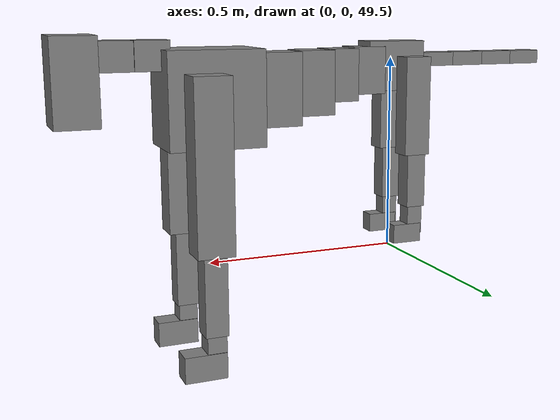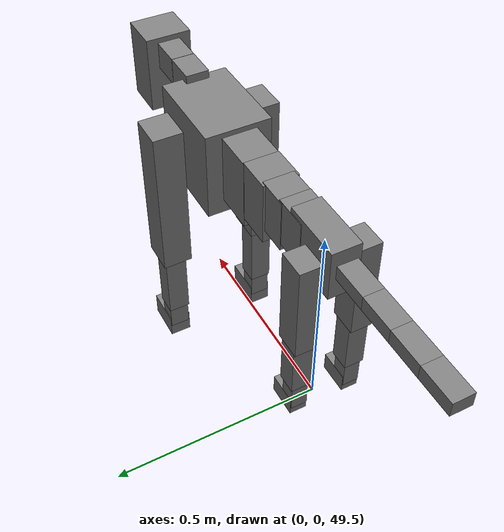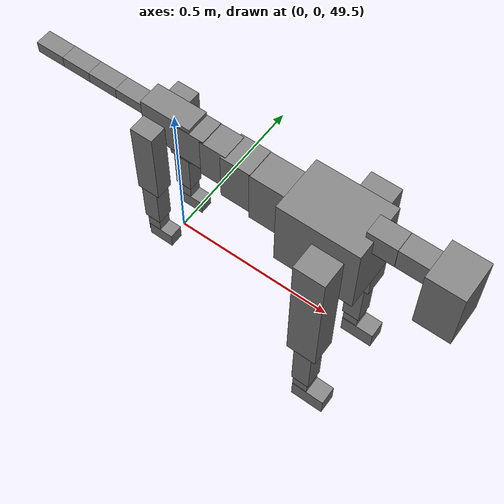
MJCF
<mujoco model="dog">

    <default>
        <joint armature="0.02" stiffness="1" damping="0.2" limited="true"/>
        <geom condim="3" friction="1 0.05 0.05" margin="0.01"/>
        <motor ctrllimited="true" ctrlrange="-1.0 1.0" forcelimited="true" gear="50"/>
    </default>

    <compiler inertiafromgeom="true" angle="radian"/>

    <option timestep="0.016" iterations="50" tolerance="1e-10" solver="Newton" jacobian="dense" cone="pyramidal"/>

    <size nconmax="20000" njmax="60000" nstack="5000000"/>
    <visual>
        <map force="0.1" zfar="30"/>
        <rgba haze="0.15 0.25 0.35 1"/>
        <quality shadowsize="2048"/>
        <global offwidth="800" offheight="800"/>
    </visual>

    <asset>
        <texture type="skybox" builtin="gradient" rgb1="0.3 0.5 0.7" rgb2="0 0 0" width="512" height="512"/>
        <texture name="texplane" type="2d" builtin="checker" rgb1=".2 .3 .4" rgb2=".1 0.15 0.2" width="512" height="512"
                 mark="cross" markrgb=".8 .8 .8"/>
        <texture name="texgeom" type="cube" builtin="flat" mark="cross" width="127" height="1278" rgb1="0.8 0.6 0.4"
                 rgb2="0.8 0.6 0.4" markrgb="1 1 1" random="0.01"/>

        <material name="matplane" reflectance="0.3" texture="texplane" texrepeat="1 1" texuniform="true"/>
        <material name="matgeom" texture="texgeom" texuniform="true" rgba="0.8 0.6 .4 1"/>
    </asset>

    <worldbody>
        <geom name="floor" pos="0 0 0" size="0 0 .25" type="plane" material="matplane" condim="3"/>

        <light directional="false" diffuse=".2 .2 .2" specular="0 0 0" pos="0 0 5" dir="0 0 -1" castshadow="false"/>
        <light mode="targetbodycom" target="torso" directional="false" diffuse=".8 .8 .8" specular="0.3 0.3 0.3"
               pos="0 0 4.0" dir="0 0 -1"/>

        <body name="root" pos="0 0 50">
            <freejoint name="root_1"/>
            <geom type="box" pos="0 0 -0.02" size="0.0774  0.0358  0.063" density="2030"/>

            <body name="spine1" pos="0.054 0 0">
                <joint name="spine1_y" axis="0 1 0" range="0 0.7" limited="true"/>
                <geom type="box" pos="0.02375 0 -0.03" size="0.04375  0.0375  0.05985" density="2030"/>

                <body name="spine2" pos="0.0612 0 0">
                    <joint name="spine2_y" axis="0 1 0" range="-0.15 0.15" limited="true"/>
                    <geom type="box" pos="0.03555  0  -0.04" size="0.04055  0.039  0.06615" density="2030"/>

                    <body name="spine3" pos="0.0730 0 0">
                        <joint name="spine3_y" axis="0 1 0" range="-0.15 0.15" limited="true"/>
                        <geom type="box" pos="0.03555  0  -0.057" size="0.04555  0.0445  0.081" density="2030"/>

                        <body name="spine4" pos="0.0780 0 0">
                            <joint name="spine4_y" axis="0 1 0" range="-0.15 0.15" limited="true"/>
                            <geom type="box" pos="0.05265  0  -0.07" size="0.05265  0.045  0.09135" density="2030"/>

                            <body name="torso" pos="0.1082 0 0">
                                <joint name="torso_y" axis="0 1 0" range="-0.15 0.15" limited="true"/>
                                <geom type="box" pos="0.11925  0  -0.085" size="0.11925  0.085  0.11745"
                                      density="2030"/>

                                <body name="neck1" pos="0.2160  0   0.0180">
                                    <joint name="neck1_y" axis="0 1 0" range="-1.2  -1" limited="true"/>
                                    <geom type="box" pos="0.0423  0  0" size="0.0423  0.03  0.036" density="2325"/>

                                    <body name="neck2" pos="0.0853  0  0">
                                        <joint name="neck2_y" axis="0 1 0" range="0.1  0" limited="true"/>
                                        <geom type="box" pos="0.0423  0  0" size="0.0423  0.03  0.036" density="2325"/>

                                        <body name="head" pos="0.0853  0  0">
                                            <joint name="head_y" axis="0 1 0" range="-0.3  -0.2" limited="true"/>
                                            <geom type="box" pos="0.0531  0  -0.055" size="0.0531  0.06  0.1044"
                                                  density="4030"/>

                                        </body>
                                    </body>
                                </body>

                                <body name="front_shoulder" pos="0.156  0   -0.0480">
                                    <joint name="front_shoulder_y" axis="0 1 0" range="-1 1.5" limited="true"/>
                                    <geom type="box" pos="0 0.13 -0.1833" size="0.0458  0.0392  0.2100" density="1158"/>
                                    <geom type="box" pos="0 -0.13 -0.1833" size="0.0458  0.0392  0.2100"
                                          density="1158"/>

                                    <body name="front_elbow" pos="0  0  -0.3666">
                                        <joint name="front_elbow_y" axis="0 1 0" range="-2 0" limited="true"/>
                                        <geom type="box" pos="0 0.13 -0.1109" size="0.0283  0.0289  0.1109"
                                              density="1081"/>
                                        <geom type="box" pos="0 -0.13 -0.1109" size="0.0283  0.0289  0.1109"
                                              density="1081"/>

                                        <body name="front_wrist" pos="0  0  -0.2218">
                                            <joint name="front_wrist_y" axis="0 1 0" range="-0.2 0" limited="true"/>
                                            <geom type="box" pos="0 0.13 -0.0280" size="0.0240  0.0266  0.0412"
                                                  density="1664"/>
                                            <geom type="box" pos="0 -0.13 -0.0280" size="0.0240  0.0266  0.0412"
                                                  density="1664"/>

                                            <body name="front_finger_end" pos="0  0  -0.0561">
                                                <joint name="front_finger_y" axis="0 1 0" range="-0.4 1"
                                                       limited="true"/>
                                                <geom type="box" pos="0.0286  0.13  -0.0172"
                                                      size="0.0524  0.0286  0.0322" density="1515"/>
                                                <geom type="box" pos="0.0286  -0.13  -0.0172"
                                                      size="0.0524  0.0286  0.0322" density="1515"/>

                                            </body>

                                        </body>
                                    </body>
                                </body>

                            </body>
                        </body>
                    </body>
                </body>
            </body>

            <body name="back_hip" pos="-0.03 0 -0.018">
                <joint name="back_hip_y" axis="0 1 0" range="-1.5 0.3" limited="true"/>
                <geom type="box" pos="0 0.07 -0.1021" size="0.0342  0.0268  0.1249" density="1154"/>
                <geom type="box" pos="0 -0.07 -0.1021" size="0.0342  0.0268  0.1249" density="1154"/>

                <body name="back_knee" pos="0  0  -0.2041">
                    <joint name="back_knee_y" axis="0 1 0" range="0 2.8" limited="true"/>
                    <geom type="box" pos="0 0.07 -0.0715" size="0.0250  0.0246  0.0871" density="1227"/>
                    <geom type="box" pos="0 -0.07 -0.0715" size="0.0250  0.0246  0.0871" density="1227"/>

                    <body name="back_ankle" pos="0  0  -0.1430">
                        <joint name="back_ankle_y" axis="0 1 0" range="-2.2 0" limited="true"/>
                        <geom type="box" pos="0 0.07 -0.0385" size="0.0203  0.0203  0.0498" density="1284"/>
                        <geom type="box" pos="0 -0.07 -0.0385" size="0.0203  0.0203  0.0498" density="1284"/>

                        <body name="back_toe_end" pos="0  0  -0.0770">
                            <joint name="back_toe_y" axis="0 1 0" range="-0.4 1" limited="true"/>
                            <geom type="box" pos="0.0210  0.07  -0.0090" size="0.0386  0.0210  0.0240" density="1515"/>
                            <geom type="box" pos="0.0210  -0.07  -0.0090" size="0.0386  0.0210  0.0240" density="1515"/>

                        </body>
                    </body>
                </body>
            </body>

            <body name="tail1" pos="-0.074 0 -0.006">
                <joint name="tail1_y" axis="0 1 0" range="-0.2 0.2" limited="true"/>
                <geom type="box" pos="-0.0536  0  0" size="0.045  0.025  0.0175" density="1587"/>

                <body name="tail2" pos="-0.09 0 0">
                    <joint name="tail2_y" axis="0 1 0" range="-0.2 0.2" limited="true"/>
                    <geom type="box" pos="-0.0536  0  0" size="0.045  0.025  0.0175" density="1587"/>

                    <body name="tail3" pos="-0.09 0 0">
                        <joint name="tail3_y" axis="0 1 0" range="-0.2 0.2" limited="true"/>
                        <geom type="box" pos="-0.0536  0  0" size="0.045  0.025  0.0175" density="1587"/>

                        <body name="tail4" pos="-0.09 0 0">
                            <joint name="tail4_y" axis="0 1 0" range="-0.2 0.2" limited="true"/>
                            <geom type="box" pos="-0.0536  0  0" size="0.045  0.025  0.0175" density="1587"/>

                        </body>
                    </body>
                </body>
            </body>
        </body>
    </worldbody>

    <actuator>
        <motor joint="spine1_y" forcerange="-150 150     "/>
        <motor joint="spine2_y" forcerange="-150 150     "/>
        <motor joint="spine3_y" forcerange="-150 150     "/>
        <motor joint="spine4_y" forcerange="-150 150     "/>
        <motor joint="torso_y" forcerange="-150 150     "/>
        <motor joint="neck1_y" forcerange="-100 100       "/>
        <motor joint="neck2_y" forcerange="-100 100       "/>
        <motor joint="head_y" forcerange="-150 150       "/>
        <motor joint="front_shoulder_y" forcerange="-164.23 196.81"/>
        <motor joint="front_elbow_y" forcerange="-134.15 176.04"/>
        <motor joint="front_wrist_y" forcerange="-116.47 96.49"/>
        <motor joint="front_finger_y" forcerange="-81.35 31.12"/>
        <motor joint="back_hip_y" forcerange="-228.87 328.61"/>
        <motor joint="back_knee_y" forcerange="-240.24 317.90"/>
        <motor joint="back_angle_y" forcerange="-73.20 151.28"/>
        <motor joint="back_toe_y" forcerange="-47.34 40.91"/>
        <motor joint="tail1_y" forcerange="-50 50     "/>
        <motor joint="tail2_y" forcerange="-50 50     "/>
        <motor joint="tail3_y" forcerange="-50 50     "/>
        <motor joint="tail4_y" forcerange="-50 50     "/>
    </actuator>
</mujoco>
